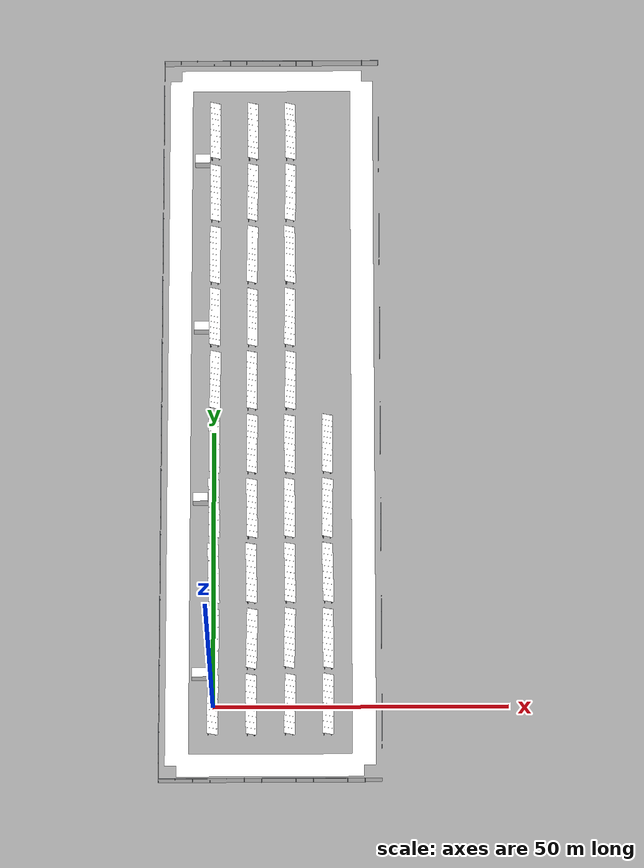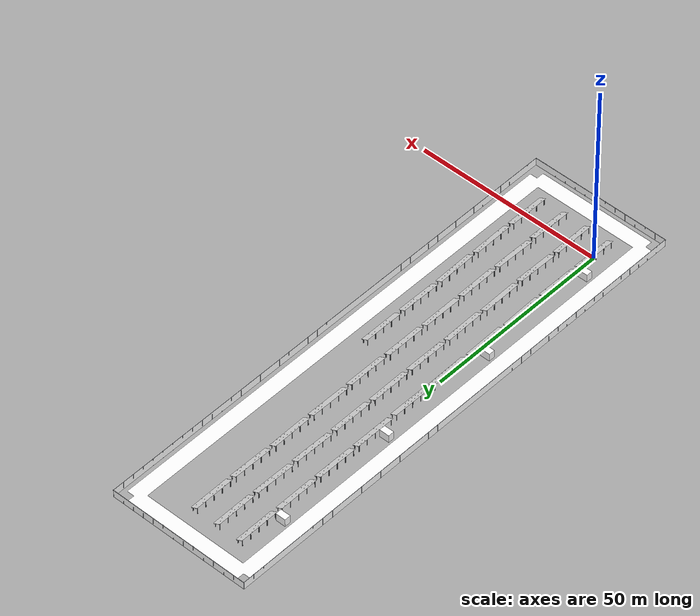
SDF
<sdf version="1.10">
 <world name="solar_farm">
  <physics name="default" type="ode">
   <max_step_size>0.001</max_step_size>
   <real_time_factor>1.0</real_time_factor>
  </physics>
  <plugin filename="gz-sim-physics-system" name="gz::sim::systems::Physics"/>
  <plugin filename="gz-sim-user-commands-system" name="gz::sim::systems::UserCommands"/>
  <plugin filename="gz-sim-scene-broadcaster-system" name="gz::sim::systems::SceneBroadcaster"/>
  <plugin filename="gz-sim-sensors-system" name="gz::sim::systems::Sensors">
   <render_engine>ogre2</render_engine>
  </plugin>
  <plugin filename="gz-sim-imu-system" name="gz::sim::systems::Imu"/>
  <plugin filename="gz-sim-navsat-system" name="gz::sim::systems::NavSat"/>
  <spherical_coordinates>
   <latitude_deg>-35.363262</latitude_deg>
   <longitude_deg>149.165237</longitude_deg>
   <elevation>584</elevation>
   <heading_deg>0</heading_deg>
   <surface_model>EARTH_WGS84</surface_model>
  </spherical_coordinates>
  <scene>
   <ambient>0.50 0.51 0.55 1</ambient>
   <background>0.62 0.72 0.85 1</background>
   <shadows>true</shadows>
   <grid>false</grid>
  </scene>
  <light type="directional" name="sun">
   <pose>0 0 60 0 0 0</pose>
   <diffuse>1.00 0.97 0.90 1</diffuse>
   <specular>0.35 0.35 0.33 1</specular>
   <direction>0.4394 -0.3687 -0.8192</direction>
   <attenuation>
    <range>1000</range>
    <constant>0.9</constant>
    <linear>0.0</linear>
    <quadratic>0.0</quadratic>
   </attenuation>
  </light>
  <model name="table_0000">
   <static>true</static>
   <pose>-0.052 0.058 0 0 0 -0.00816</pose>
   <link name="table">
    <collision name="glass_col">
     <pose>0 0 1.6 0 0.488692 0</pose>
     <geometry><box><size>2.100 10.680 0.040</size></box></geometry>
    </collision>
    <visual name="glass">
     <pose>0 0 1.6 0 0.488692 0</pose>
     <geometry><mesh><uri>model://solar_farm_assets/meshes/pv_glass.obj</uri></mesh></geometry>
     <material>
      <ambient>0.25 0.25 0.25 1</ambient>
      <diffuse>1 1 1 1</diffuse>
      <specular>0.4 0.4 0.4 1</specular>
      <pbr>
       <metal>
        <albedo_map>model://solar_farm_assets/materials/textures/pv_atlas_01_albedo.png</albedo_map>
        <roughness_map>model://solar_farm_assets/materials/textures/pv_atlas_01_roughness.png</roughness_map>
        <normal_map>model://solar_farm_assets/materials/textures/pv_normal.png</normal_map>
        <metalness>0.1</metalness>
       </metal>
      </pbr>
     </material>
    </visual>
    <visual name="rack">
     <cast_shadows>false</cast_shadows>
     <geometry><mesh><uri>model://solar_farm_assets/meshes/pv_rack.obj</uri></mesh></geometry>
     <material>
      <ambient>0.18 0.18 0.20 1</ambient>
      <diffuse>0.40 0.41 0.43 1</diffuse>
      <specular>0.5 0.5 0.5 1</specular>
      <pbr><metal><roughness>0.45</roughness><metalness>0.85</metalness></metal></pbr>
     </material>
    </visual>
   </link>
  </model>
  <model name="table_0001">
   <static>true</static>
   <pose>0.043 11.860 0 0 0 -0.00748</pose>
   <link name="table">
    <collision name="glass_col">
     <pose>0 0 1.6 0 0.488692 0</pose>
     <geometry><box><size>2.100 10.680 0.040</size></box></geometry>
    </collision>
    <visual name="glass">
     <pose>0 0 1.6 0 0.488692 0</pose>
     <geometry><mesh><uri>model://solar_farm_assets/meshes/pv_glass.obj</uri></mesh></geometry>
     <material>
      <ambient>0.25 0.25 0.25 1</ambient>
      <diffuse>1 1 1 1</diffuse>
      <specular>0.4 0.4 0.4 1</specular>
      <pbr>
       <metal>
        <albedo_map>model://solar_farm_assets/materials/textures/pv_atlas_08_albedo.png</albedo_map>
        <roughness_map>model://solar_farm_assets/materials/textures/pv_atlas_08_roughness.png</roughness_map>
        <normal_map>model://solar_farm_assets/materials/textures/pv_normal.png</normal_map>
        <metalness>0.1</metalness>
       </metal>
      </pbr>
     </material>
    </visual>
    <visual name="rack">
     <cast_shadows>false</cast_shadows>
     <geometry><mesh><uri>model://solar_farm_assets/meshes/pv_rack.obj</uri></mesh></geometry>
     <material>
      <ambient>0.18 0.18 0.20 1</ambient>
      <diffuse>0.40 0.41 0.43 1</diffuse>
      <specular>0.5 0.5 0.5 1</specular>
      <pbr><metal><roughness>0.45</roughness><metalness>0.85</metalness></metal></pbr>
     </material>
    </visual>
   </link>
  </model>
  <model name="table_0002">
   <static>true</static>
   <pose>-0.021 23.706 0 0 0 0.02349</pose>
   <link name="table">
    <collision name="glass_col">
     <pose>0 0 1.6 0 0.488692 0</pose>
     <geometry><box><size>2.100 10.680 0.040</size></box></geometry>
    </collision>
    <visual name="glass">
     <pose>0 0 1.6 0 0.488692 0</pose>
     <geometry><mesh><uri>model://solar_farm_assets/meshes/pv_glass.obj</uri></mesh></geometry>
     <material>
      <ambient>0.25 0.25 0.25 1</ambient>
      <diffuse>1 1 1 1</diffuse>
      <specular>0.4 0.4 0.4 1</specular>
      <pbr>
       <metal>
        <albedo_map>model://solar_farm_assets/materials/textures/pv_atlas_11_albedo.png</albedo_map>
        <roughness_map>model://solar_farm_assets/materials/textures/pv_atlas_11_roughness.png</roughness_map>
        <normal_map>model://solar_farm_assets/materials/textures/pv_normal.png</normal_map>
        <metalness>0.1</metalness>
       </metal>
      </pbr>
     </material>
    </visual>
    <visual name="rack">
     <cast_shadows>false</cast_shadows>
     <geometry><mesh><uri>model://solar_farm_assets/meshes/pv_rack.obj</uri></mesh></geometry>
     <material>
      <ambient>0.18 0.18 0.20 1</ambient>
      <diffuse>0.40 0.41 0.43 1</diffuse>
      <specular>0.5 0.5 0.5 1</specular>
      <pbr><metal><roughness>0.45</roughness><metalness>0.85</metalness></metal></pbr>
     </material>
    </visual>
   </link>
  </model>
  <model name="table_0003">
   <static>true</static>
   <pose>0.005 35.646 0 0 0 0.01629</pose>
   <link name="table">
    <collision name="glass_col">
     <pose>0 0 1.6 0 0.488692 0</pose>
     <geometry><box><size>2.100 10.680 0.040</size></box></geometry>
    </collision>
    <visual name="glass">
     <pose>0 0 1.6 0 0.488692 0</pose>
     <geometry><mesh><uri>model://solar_farm_assets/meshes/pv_glass.obj</uri></mesh></geometry>
     <material>
      <ambient>0.25 0.25 0.25 1</ambient>
      <diffuse>1 1 1 1</diffuse>
      <specular>0.4 0.4 0.4 1</specular>
      <pbr>
       <metal>
        <albedo_map>model://solar_farm_assets/materials/textures/pv_atlas_00_albedo.png</albedo_map>
        <roughness_map>model://solar_farm_assets/materials/textures/pv_atlas_00_roughness.png</roughness_map>
        <normal_map>model://solar_farm_assets/materials/textures/pv_normal.png</normal_map>
        <metalness>0.1</metalness>
       </metal>
      </pbr>
     </material>
    </visual>
    <visual name="rack">
     <cast_shadows>false</cast_shadows>
     <geometry><mesh><uri>model://solar_farm_assets/meshes/pv_rack.obj</uri></mesh></geometry>
     <material>
      <ambient>0.18 0.18 0.20 1</ambient>
      <diffuse>0.40 0.41 0.43 1</diffuse>
      <specular>0.5 0.5 0.5 1</specular>
      <pbr><metal><roughness>0.45</roughness><metalness>0.85</metalness></metal></pbr>
     </material>
    </visual>
   </link>
  </model>
  <model name="table_0004">
   <static>true</static>
   <pose>0.014 47.573 0 0 0 0.01068</pose>
   <link name="table">
    <collision name="glass_col">
     <pose>0 0 1.6 0 0.488692 0</pose>
     <geometry><box><size>2.100 10.680 0.040</size></box></geometry>
    </collision>
    <visual name="glass">
     <pose>0 0 1.6 0 0.488692 0</pose>
     <geometry><mesh><uri>model://solar_farm_assets/meshes/pv_glass.obj</uri></mesh></geometry>
     <material>
      <ambient>0.25 0.25 0.25 1</ambient>
      <diffuse>1 1 1 1</diffuse>
      <specular>0.4 0.4 0.4 1</specular>
      <pbr>
       <metal>
        <albedo_map>model://solar_farm_assets/materials/textures/pv_atlas_05_albedo.png</albedo_map>
        <roughness_map>model://solar_farm_assets/materials/textures/pv_atlas_05_roughness.png</roughness_map>
        <normal_map>model://solar_farm_assets/materials/textures/pv_normal.png</normal_map>
        <metalness>0.1</metalness>
       </metal>
      </pbr>
     </material>
    </visual>
    <visual name="rack">
     <cast_shadows>false</cast_shadows>
     <geometry><mesh><uri>model://solar_farm_assets/meshes/pv_rack.obj</uri></mesh></geometry>
     <material>
      <ambient>0.18 0.18 0.20 1</ambient>
      <diffuse>0.40 0.41 0.43 1</diffuse>
      <specular>0.5 0.5 0.5 1</specular>
      <pbr><metal><roughness>0.45</roughness><metalness>0.85</metalness></metal></pbr>
     </material>
    </visual>
   </link>
  </model>
  <model name="table_0005">
   <static>true</static>
   <pose>0.091 59.446 0 0 0 -0.00746</pose>
   <link name="table">
    <collision name="glass_col">
     <pose>0 0 1.6 0 0.488692 0</pose>
     <geometry><box><size>2.100 10.680 0.040</size></box></geometry>
    </collision>
    <visual name="glass">
     <pose>0 0 1.6 0 0.488692 0</pose>
     <geometry><mesh><uri>model://solar_farm_assets/meshes/pv_glass.obj</uri></mesh></geometry>
     <material>
      <ambient>0.25 0.25 0.25 1</ambient>
      <diffuse>1 1 1 1</diffuse>
      <specular>0.4 0.4 0.4 1</specular>
      <pbr>
       <metal>
        <albedo_map>model://solar_farm_assets/materials/textures/pv_atlas_10_albedo.png</albedo_map>
        <roughness_map>model://solar_farm_assets/materials/textures/pv_atlas_10_roughness.png</roughness_map>
        <normal_map>model://solar_farm_assets/materials/textures/pv_normal.png</normal_map>
        <metalness>0.1</metalness>
       </metal>
      </pbr>
     </material>
    </visual>
    <visual name="rack">
     <cast_shadows>false</cast_shadows>
     <geometry><mesh><uri>model://solar_farm_assets/meshes/pv_rack.obj</uri></mesh></geometry>
     <material>
      <ambient>0.18 0.18 0.20 1</ambient>
      <diffuse>0.40 0.41 0.43 1</diffuse>
      <specular>0.5 0.5 0.5 1</specular>
      <pbr><metal><roughness>0.45</roughness><metalness>0.85</metalness></metal></pbr>
     </material>
    </visual>
   </link>
  </model>
  <model name="table_0006">
   <static>true</static>
   <pose>-0.032 71.339 0 0 0 -0.00011</pose>
   <link name="table">
    <collision name="glass_col">
     <pose>0 0 1.6 0 0.488692 0</pose>
     <geometry><box><size>2.100 10.680 0.040</size></box></geometry>
    </collision>
    <visual name="glass">
     <pose>0 0 1.6 0 0.488692 0</pose>
     <geometry><mesh><uri>model://solar_farm_assets/meshes/pv_glass.obj</uri></mesh></geometry>
     <material>
      <ambient>0.25 0.25 0.25 1</ambient>
      <diffuse>1 1 1 1</diffuse>
      <specular>0.4 0.4 0.4 1</specular>
      <pbr>
       <metal>
        <albedo_map>model://solar_farm_assets/materials/textures/pv_atlas_15_albedo.png</albedo_map>
        <roughness_map>model://solar_farm_assets/materials/textures/pv_atlas_15_roughness.png</roughness_map>
        <normal_map>model://solar_farm_assets/materials/textures/pv_normal.png</normal_map>
        <metalness>0.1</metalness>
       </metal>
      </pbr>
     </material>
    </visual>
    <visual name="rack">
     <cast_shadows>false</cast_shadows>
     <geometry><mesh><uri>model://solar_farm_assets/meshes/pv_rack.obj</uri></mesh></geometry>
     <material>
      <ambient>0.18 0.18 0.20 1</ambient>
      <diffuse>0.40 0.41 0.43 1</diffuse>
      <specular>0.5 0.5 0.5 1</specular>
      <pbr><metal><roughness>0.45</roughness><metalness>0.85</metalness></metal></pbr>
     </material>
    </visual>
   </link>
  </model>
  <model name="table_0007">
   <static>true</static>
   <pose>-0.025 83.118 0 0 0 -0.00457</pose>
   <link name="table">
    <collision name="glass_col">
     <pose>0 0 1.6 0 0.488692 0</pose>
     <geometry><box><size>2.100 10.680 0.040</size></box></geometry>
    </collision>
    <visual name="glass">
     <pose>0 0 1.6 0 0.488692 0</pose>
     <geometry><mesh><uri>model://solar_farm_assets/meshes/pv_glass.obj</uri></mesh></geometry>
     <material>
      <ambient>0.25 0.25 0.25 1</ambient>
      <diffuse>1 1 1 1</diffuse>
      <specular>0.4 0.4 0.4 1</specular>
      <pbr>
       <metal>
        <albedo_map>model://solar_farm_assets/materials/textures/pv_atlas_07_albedo.png</albedo_map>
        <roughness_map>model://solar_farm_assets/materials/textures/pv_atlas_07_roughness.png</roughness_map>
        <normal_map>model://solar_farm_assets/materials/textures/pv_normal.png</normal_map>
        <metalness>0.1</metalness>
       </metal>
      </pbr>
     </material>
    </visual>
    <visual name="rack">
     <cast_shadows>false</cast_shadows>
     <geometry><mesh><uri>model://solar_farm_assets/meshes/pv_rack.obj</uri></mesh></geometry>
     <material>
      <ambient>0.18 0.18 0.20 1</ambient>
      <diffuse>0.40 0.41 0.43 1</diffuse>
      <specular>0.5 0.5 0.5 1</specular>
      <pbr><metal><roughness>0.45</roughness><metalness>0.85</metalness></metal></pbr>
     </material>
    </visual>
   </link>
  </model>
  <model name="table_0008">
   <static>true</static>
   <pose>-0.043 94.991 0 0 0 0.00524</pose>
   <link name="table">
    <collision name="glass_col">
     <pose>0 0 1.6 0 0.488692 0</pose>
     <geometry><box><size>2.100 10.680 0.040</size></box></geometry>
    </collision>
    <visual name="glass">
     <pose>0 0 1.6 0 0.488692 0</pose>
     <geometry><mesh><uri>model://solar_farm_assets/meshes/pv_glass.obj</uri></mesh></geometry>
     <material>
      <ambient>0.25 0.25 0.25 1</ambient>
      <diffuse>1 1 1 1</diffuse>
      <specular>0.4 0.4 0.4 1</specular>
      <pbr>
       <metal>
        <albedo_map>model://solar_farm_assets/materials/textures/pv_atlas_14_albedo.png</albedo_map>
        <roughness_map>model://solar_farm_assets/materials/textures/pv_atlas_14_roughness.png</roughness_map>
        <normal_map>model://solar_farm_assets/materials/textures/pv_normal.png</normal_map>
        <metalness>0.1</metalness>
       </metal>
      </pbr>
     </material>
    </visual>
    <visual name="rack">
     <cast_shadows>false</cast_shadows>
     <geometry><mesh><uri>model://solar_farm_assets/meshes/pv_rack.obj</uri></mesh></geometry>
     <material>
      <ambient>0.18 0.18 0.20 1</ambient>
      <diffuse>0.40 0.41 0.43 1</diffuse>
      <specular>0.5 0.5 0.5 1</specular>
      <pbr><metal><roughness>0.45</roughness><metalness>0.85</metalness></metal></pbr>
     </material>
    </visual>
   </link>
  </model>
  <model name="table_0009">
   <static>true</static>
   <pose>-0.029 107.003 0 0 0 0.00418</pose>
   <link name="table">
    <collision name="glass_col">
     <pose>0 0 1.6 0 0.488692 0</pose>
     <geometry><box><size>2.100 10.680 0.040</size></box></geometry>
    </collision>
    <visual name="glass">
     <pose>0 0 1.6 0 0.488692 0</pose>
     <geometry><mesh><uri>model://solar_farm_assets/meshes/pv_glass.obj</uri></mesh></geometry>
     <material>
      <ambient>0.25 0.25 0.25 1</ambient>
      <diffuse>1 1 1 1</diffuse>
      <specular>0.4 0.4 0.4 1</specular>
      <pbr>
       <metal>
        <albedo_map>model://solar_farm_assets/materials/textures/pv_atlas_06_albedo.png</albedo_map>
        <roughness_map>model://solar_farm_assets/materials/textures/pv_atlas_06_roughness.png</roughness_map>
        <normal_map>model://solar_farm_assets/materials/textures/pv_normal.png</normal_map>
        <metalness>0.1</metalness>
       </metal>
      </pbr>
     </material>
    </visual>
    <visual name="rack">
     <cast_shadows>false</cast_shadows>
     <geometry><mesh><uri>model://solar_farm_assets/meshes/pv_rack.obj</uri></mesh></geometry>
     <material>
      <ambient>0.18 0.18 0.20 1</ambient>
      <diffuse>0.40 0.41 0.43 1</diffuse>
      <specular>0.5 0.5 0.5 1</specular>
      <pbr><metal><roughness>0.45</roughness><metalness>0.85</metalness></metal></pbr>
     </material>
    </visual>
   </link>
  </model>
  <model name="table_0010">
   <static>true</static>
   <pose>6.467 -0.000 0 0 0 0.00585</pose>
   <link name="table">
    <collision name="glass_col">
     <pose>0 0 1.6 0 0.488692 0</pose>
     <geometry><box><size>2.100 10.680 0.040</size></box></geometry>
    </collision>
    <visual name="glass">
     <pose>0 0 1.6 0 0.488692 0</pose>
     <geometry><mesh><uri>model://solar_farm_assets/meshes/pv_glass.obj</uri></mesh></geometry>
     <material>
      <ambient>0.25 0.25 0.25 1</ambient>
      <diffuse>1 1 1 1</diffuse>
      <specular>0.4 0.4 0.4 1</specular>
      <pbr>
       <metal>
        <albedo_map>model://solar_farm_assets/materials/textures/pv_atlas_13_albedo.png</albedo_map>
        <roughness_map>model://solar_farm_assets/materials/textures/pv_atlas_13_roughness.png</roughness_map>
        <normal_map>model://solar_farm_assets/materials/textures/pv_normal.png</normal_map>
        <metalness>0.1</metalness>
       </metal>
      </pbr>
     </material>
    </visual>
    <visual name="rack">
     <cast_shadows>false</cast_shadows>
     <geometry><mesh><uri>model://solar_farm_assets/meshes/pv_rack.obj</uri></mesh></geometry>
     <material>
      <ambient>0.18 0.18 0.20 1</ambient>
      <diffuse>0.40 0.41 0.43 1</diffuse>
      <specular>0.5 0.5 0.5 1</specular>
      <pbr><metal><roughness>0.45</roughness><metalness>0.85</metalness></metal></pbr>
     </material>
    </visual>
   </link>
  </model>
  <model name="table_0011">
   <static>true</static>
   <pose>6.551 11.837 0 0 0 -0.01861</pose>
   <link name="table">
    <collision name="glass_col">
     <pose>0 0 1.6 0 0.488692 0</pose>
     <geometry><box><size>2.100 10.680 0.040</size></box></geometry>
    </collision>
    <visual name="glass">
     <pose>0 0 1.6 0 0.488692 0</pose>
     <geometry><mesh><uri>model://solar_farm_assets/meshes/pv_glass.obj</uri></mesh></geometry>
     <material>
      <ambient>0.25 0.25 0.25 1</ambient>
      <diffuse>1 1 1 1</diffuse>
      <specular>0.4 0.4 0.4 1</specular>
      <pbr>
       <metal>
        <albedo_map>model://solar_farm_assets/materials/textures/pv_atlas_17_albedo.png</albedo_map>
        <roughness_map>model://solar_farm_assets/materials/textures/pv_atlas_17_roughness.png</roughness_map>
        <normal_map>model://solar_farm_assets/materials/textures/pv_normal.png</normal_map>
        <metalness>0.1</metalness>
       </metal>
      </pbr>
     </material>
    </visual>
    <visual name="rack">
     <cast_shadows>false</cast_shadows>
     <geometry><mesh><uri>model://solar_farm_assets/meshes/pv_rack.obj</uri></mesh></geometry>
     <material>
      <ambient>0.18 0.18 0.20 1</ambient>
      <diffuse>0.40 0.41 0.43 1</diffuse>
      <specular>0.5 0.5 0.5 1</specular>
      <pbr><metal><roughness>0.45</roughness><metalness>0.85</metalness></metal></pbr>
     </material>
    </visual>
   </link>
  </model>
  <model name="table_0012">
   <static>true</static>
   <pose>6.430 23.735 0 0 0 0.01618</pose>
   <link name="table">
    <collision name="glass_col">
     <pose>0 0 1.6 0 0.488692 0</pose>
     <geometry><box><size>2.100 10.680 0.040</size></box></geometry>
    </collision>
    <visual name="glass">
     <pose>0 0 1.6 0 0.488692 0</pose>
     <geometry><mesh><uri>model://solar_farm_assets/meshes/pv_glass.obj</uri></mesh></geometry>
     <material>
      <ambient>0.25 0.25 0.25 1</ambient>
      <diffuse>1 1 1 1</diffuse>
      <specular>0.4 0.4 0.4 1</specular>
      <pbr>
       <metal>
        <albedo_map>model://solar_farm_assets/materials/textures/pv_atlas_03_albedo.png</albedo_map>
        <roughness_map>model://solar_farm_assets/materials/textures/pv_atlas_03_roughness.png</roughness_map>
        <normal_map>model://solar_farm_assets/materials/textures/pv_normal.png</normal_map>
        <metalness>0.1</metalness>
       </metal>
      </pbr>
     </material>
    </visual>
    <visual name="rack">
     <cast_shadows>false</cast_shadows>
     <geometry><mesh><uri>model://solar_farm_assets/meshes/pv_rack.obj</uri></mesh></geometry>
     <material>
      <ambient>0.18 0.18 0.20 1</ambient>
      <diffuse>0.40 0.41 0.43 1</diffuse>
      <specular>0.5 0.5 0.5 1</specular>
      <pbr><metal><roughness>0.45</roughness><metalness>0.85</metalness></metal></pbr>
     </material>
    </visual>
   </link>
  </model>
  <model name="table_0013">
   <static>true</static>
   <pose>6.496 35.611 0 0 0 0.01446</pose>
   <link name="table">
    <collision name="glass_col">
     <pose>0 0 1.6 0 0.488692 0</pose>
     <geometry><box><size>2.100 10.680 0.040</size></box></geometry>
    </collision>
    <visual name="glass">
     <pose>0 0 1.6 0 0.488692 0</pose>
     <geometry><mesh><uri>model://solar_farm_assets/meshes/pv_glass.obj</uri></mesh></geometry>
     <material>
      <ambient>0.25 0.25 0.25 1</ambient>
      <diffuse>1 1 1 1</diffuse>
      <specular>0.4 0.4 0.4 1</specular>
      <pbr>
       <metal>
        <albedo_map>model://solar_farm_assets/materials/textures/pv_atlas_16_albedo.png</albedo_map>
        <roughness_map>model://solar_farm_assets/materials/textures/pv_atlas_16_roughness.png</roughness_map>
        <normal_map>model://solar_farm_assets/materials/textures/pv_normal.png</normal_map>
        <metalness>0.1</metalness>
       </metal>
      </pbr>
     </material>
    </visual>
    <visual name="rack">
     <cast_shadows>false</cast_shadows>
     <geometry><mesh><uri>model://solar_farm_assets/meshes/pv_rack.obj</uri></mesh></geometry>
     <material>
      <ambient>0.18 0.18 0.20 1</ambient>
      <diffuse>0.40 0.41 0.43 1</diffuse>
      <specular>0.5 0.5 0.5 1</specular>
      <pbr><metal><roughness>0.45</roughness><metalness>0.85</metalness></metal></pbr>
     </material>
    </visual>
   </link>
  </model>
  <model name="table_0014">
   <static>true</static>
   <pose>6.481 47.524 0 0 0 -0.00235</pose>
   <link name="table">
    <collision name="glass_col">
     <pose>0 0 1.6 0 0.488692 0</pose>
     <geometry><box><size>2.100 10.680 0.040</size></box></geometry>
    </collision>
    <visual name="glass">
     <pose>0 0 1.6 0 0.488692 0</pose>
     <geometry><mesh><uri>model://solar_farm_assets/meshes/pv_glass.obj</uri></mesh></geometry>
     <material>
      <ambient>0.25 0.25 0.25 1</ambient>
      <diffuse>1 1 1 1</diffuse>
      <specular>0.4 0.4 0.4 1</specular>
      <pbr>
       <metal>
        <albedo_map>model://solar_farm_assets/materials/textures/pv_atlas_12_albedo.png</albedo_map>
        <roughness_map>model://solar_farm_assets/materials/textures/pv_atlas_12_roughness.png</roughness_map>
        <normal_map>model://solar_farm_assets/materials/textures/pv_normal.png</normal_map>
        <metalness>0.1</metalness>
       </metal>
      </pbr>
     </material>
    </visual>
    <visual name="rack">
     <cast_shadows>false</cast_shadows>
     <geometry><mesh><uri>model://solar_farm_assets/meshes/pv_rack.obj</uri></mesh></geometry>
     <material>
      <ambient>0.18 0.18 0.20 1</ambient>
      <diffuse>0.40 0.41 0.43 1</diffuse>
      <specular>0.5 0.5 0.5 1</specular>
      <pbr><metal><roughness>0.45</roughness><metalness>0.85</metalness></metal></pbr>
     </material>
    </visual>
   </link>
  </model>
  <model name="table_0015">
   <static>true</static>
   <pose>6.426 59.375 0 0 0 0.00863</pose>
   <link name="table">
    <collision name="glass_col">
     <pose>0 0 1.6 0 0.488692 0</pose>
     <geometry><box><size>2.100 10.680 0.040</size></box></geometry>
    </collision>
    <visual name="glass">
     <pose>0 0 1.6 0 0.488692 0</pose>
     <geometry><mesh><uri>model://solar_farm_assets/meshes/pv_glass.obj</uri></mesh></geometry>
     <material>
      <ambient>0.25 0.25 0.25 1</ambient>
      <diffuse>1 1 1 1</diffuse>
      <specular>0.4 0.4 0.4 1</specular>
      <pbr>
       <metal>
        <albedo_map>model://solar_farm_assets/materials/textures/pv_atlas_02_albedo.png</albedo_map>
        <roughness_map>model://solar_farm_assets/materials/textures/pv_atlas_02_roughness.png</roughness_map>
        <normal_map>model://solar_farm_assets/materials/textures/pv_normal.png</normal_map>
        <metalness>0.1</metalness>
       </metal>
      </pbr>
     </material>
    </visual>
    <visual name="rack">
     <cast_shadows>false</cast_shadows>
     <geometry><mesh><uri>model://solar_farm_assets/meshes/pv_rack.obj</uri></mesh></geometry>
     <material>
      <ambient>0.18 0.18 0.20 1</ambient>
      <diffuse>0.40 0.41 0.43 1</diffuse>
      <specular>0.5 0.5 0.5 1</specular>
      <pbr><metal><roughness>0.45</roughness><metalness>0.85</metalness></metal></pbr>
     </material>
    </visual>
   </link>
  </model>
  <model name="table_0016">
   <static>true</static>
   <pose>6.494 71.223 0 0 0 0.00199</pose>
   <link name="table">
    <collision name="glass_col">
     <pose>0 0 1.6 0 0.488692 0</pose>
     <geometry><box><size>2.100 10.680 0.040</size></box></geometry>
    </collision>
    <visual name="glass">
     <pose>0 0 1.6 0 0.488692 0</pose>
     <geometry><mesh><uri>model://solar_farm_assets/meshes/pv_glass.obj</uri></mesh></geometry>
     <material>
      <ambient>0.25 0.25 0.25 1</ambient>
      <diffuse>1 1 1 1</diffuse>
      <specular>0.4 0.4 0.4 1</specular>
      <pbr>
       <metal>
        <albedo_map>model://solar_farm_assets/materials/textures/pv_atlas_09_albedo.png</albedo_map>
        <roughness_map>model://solar_farm_assets/materials/textures/pv_atlas_09_roughness.png</roughness_map>
        <normal_map>model://solar_farm_assets/materials/textures/pv_normal.png</normal_map>
        <metalness>0.1</metalness>
       </metal>
      </pbr>
     </material>
    </visual>
    <visual name="rack">
     <cast_shadows>false</cast_shadows>
     <geometry><mesh><uri>model://solar_farm_assets/meshes/pv_rack.obj</uri></mesh></geometry>
     <material>
      <ambient>0.18 0.18 0.20 1</ambient>
      <diffuse>0.40 0.41 0.43 1</diffuse>
      <specular>0.5 0.5 0.5 1</specular>
      <pbr><metal><roughness>0.45</roughness><metalness>0.85</metalness></metal></pbr>
     </material>
    </visual>
   </link>
  </model>
  <model name="table_0017">
   <static>true</static>
   <pose>6.452 83.163 0 0 0 -0.01487</pose>
   <link name="table">
    <collision name="glass_col">
     <pose>0 0 1.6 0 0.488692 0</pose>
     <geometry><box><size>2.100 10.680 0.040</size></box></geometry>
    </collision>
    <visual name="glass">
     <pose>0 0 1.6 0 0.488692 0</pose>
     <geometry><mesh><uri>model://solar_farm_assets/meshes/pv_glass.obj</uri></mesh></geometry>
     <material>
      <ambient>0.25 0.25 0.25 1</ambient>
      <diffuse>1 1 1 1</diffuse>
      <specular>0.4 0.4 0.4 1</specular>
      <pbr>
       <metal>
        <albedo_map>model://solar_farm_assets/materials/textures/pv_atlas_04_albedo.png</albedo_map>
        <roughness_map>model://solar_farm_assets/materials/textures/pv_atlas_04_roughness.png</roughness_map>
        <normal_map>model://solar_farm_assets/materials/textures/pv_normal.png</normal_map>
        <metalness>0.1</metalness>
       </metal>
      </pbr>
     </material>
    </visual>
    <visual name="rack">
     <cast_shadows>false</cast_shadows>
     <geometry><mesh><uri>model://solar_farm_assets/meshes/pv_rack.obj</uri></mesh></geometry>
     <material>
      <ambient>0.18 0.18 0.20 1</ambient>
      <diffuse>0.40 0.41 0.43 1</diffuse>
      <specular>0.5 0.5 0.5 1</specular>
      <pbr><metal><roughness>0.45</roughness><metalness>0.85</metalness></metal></pbr>
     </material>
    </visual>
   </link>
  </model>
  <model name="table_0018">
   <static>true</static>
   <pose>6.496 95.066 0 0 0 -0.01174</pose>
   <link name="table">
    <collision name="glass_col">
     <pose>0 0 1.6 0 0.488692 0</pose>
     <geometry><box><size>2.100 10.680 0.040</size></box></geometry>
    </collision>
    <visual name="glass">
     <pose>0 0 1.6 0 0.488692 0</pose>
     <geometry><mesh><uri>model://solar_farm_assets/meshes/pv_glass.obj</uri></mesh></geometry>
     <material>
      <ambient>0.25 0.25 0.25 1</ambient>
      <diffuse>1 1 1 1</diffuse>
      <specular>0.4 0.4 0.4 1</specular>
      <pbr>
       <metal>
        <albedo_map>model://solar_farm_assets/materials/textures/pv_atlas_05_albedo.png</albedo_map>
        <roughness_map>model://solar_farm_assets/materials/textures/pv_atlas_05_roughness.png</roughness_map>
        <normal_map>model://solar_farm_assets/materials/textures/pv_normal.png</normal_map>
        <metalness>0.1</metalness>
       </metal>
      </pbr>
     </material>
    </visual>
    <visual name="rack">
     <cast_shadows>false</cast_shadows>
     <geometry><mesh><uri>model://solar_farm_assets/meshes/pv_rack.obj</uri></mesh></geometry>
     <material>
      <ambient>0.18 0.18 0.20 1</ambient>
      <diffuse>0.40 0.41 0.43 1</diffuse>
      <specular>0.5 0.5 0.5 1</specular>
      <pbr><metal><roughness>0.45</roughness><metalness>0.85</metalness></metal></pbr>
     </material>
    </visual>
   </link>
  </model>
  <model name="table_0019">
   <static>true</static>
   <pose>6.535 106.932 0 0 0 0.00741</pose>
   <link name="table">
    <collision name="glass_col">
     <pose>0 0 1.6 0 0.488692 0</pose>
     <geometry><box><size>2.100 10.680 0.040</size></box></geometry>
    </collision>
    <visual name="glass">
     <pose>0 0 1.6 0 0.488692 0</pose>
     <geometry><mesh><uri>model://solar_farm_assets/meshes/pv_glass.obj</uri></mesh></geometry>
     <material>
      <ambient>0.25 0.25 0.25 1</ambient>
      <diffuse>1 1 1 1</diffuse>
      <specular>0.4 0.4 0.4 1</specular>
      <pbr>
       <metal>
        <albedo_map>model://solar_farm_assets/materials/textures/pv_atlas_15_albedo.png</albedo_map>
        <roughness_map>model://solar_farm_assets/materials/textures/pv_atlas_15_roughness.png</roughness_map>
        <normal_map>model://solar_farm_assets/materials/textures/pv_normal.png</normal_map>
        <metalness>0.1</metalness>
       </metal>
      </pbr>
     </material>
    </visual>
    <visual name="rack">
     <cast_shadows>false</cast_shadows>
     <geometry><mesh><uri>model://solar_farm_assets/meshes/pv_rack.obj</uri></mesh></geometry>
     <material>
      <ambient>0.18 0.18 0.20 1</ambient>
      <diffuse>0.40 0.41 0.43 1</diffuse>
      <specular>0.5 0.5 0.5 1</specular>
      <pbr><metal><roughness>0.45</roughness><metalness>0.85</metalness></metal></pbr>
     </material>
    </visual>
   </link>
  </model>
  <model name="table_0020">
   <static>true</static>
   <pose>13.032 0.041 0 0 0 -0.01662</pose>
   <link name="table">
    <collision name="glass_col">
     <pose>0 0 1.6 0 0.488692 0</pose>
     <geometry><box><size>2.100 10.680 0.040</size></box></geometry>
    </collision>
    <visual name="glass">
     <pose>0 0 1.6 0 0.488692 0</pose>
     <geometry><mesh><uri>model://solar_farm_assets/meshes/pv_glass.obj</uri></mesh></geometry>
     <material>
      <ambient>0.25 0.25 0.25 1</ambient>
      <diffuse>1 1 1 1</diffuse>
      <specular>0.4 0.4 0.4 1</specular>
      <pbr>
       <metal>
        <albedo_map>model://solar_farm_assets/materials/textures/pv_atlas_11_albedo.png</albedo_map>
        <roughness_map>model://solar_farm_assets/materials/textures/pv_atlas_11_roughness.png</roughness_map>
        <normal_map>model://solar_farm_assets/materials/textures/pv_normal.png</normal_map>
        <metalness>0.1</metalness>
       </metal>
      </pbr>
     </material>
    </visual>
    <visual name="rack">
     <cast_shadows>false</cast_shadows>
     <geometry><mesh><uri>model://solar_farm_assets/meshes/pv_rack.obj</uri></mesh></geometry>
     <material>
      <ambient>0.18 0.18 0.20 1</ambient>
      <diffuse>0.40 0.41 0.43 1</diffuse>
      <specular>0.5 0.5 0.5 1</specular>
      <pbr><metal><roughness>0.45</roughness><metalness>0.85</metalness></metal></pbr>
     </material>
    </visual>
   </link>
  </model>
  <model name="table_0021">
   <static>true</static>
   <pose>12.963 11.942 0 0 0 -0.01499</pose>
   <link name="table">
    <collision name="glass_col">
     <pose>0 0 1.6 0 0.488692 0</pose>
     <geometry><box><size>2.100 10.680 0.040</size></box></geometry>
    </collision>
    <visual name="glass">
     <pose>0 0 1.6 0 0.488692 0</pose>
     <geometry><mesh><uri>model://solar_farm_assets/meshes/pv_glass.obj</uri></mesh></geometry>
     <material>
      <ambient>0.25 0.25 0.25 1</ambient>
      <diffuse>1 1 1 1</diffuse>
      <specular>0.4 0.4 0.4 1</specular>
      <pbr>
       <metal>
        <albedo_map>model://solar_farm_assets/materials/textures/pv_atlas_01_albedo.png</albedo_map>
        <roughness_map>model://solar_farm_assets/materials/textures/pv_atlas_01_roughness.png</roughness_map>
        <normal_map>model://solar_farm_assets/materials/textures/pv_normal.png</normal_map>
        <metalness>0.1</metalness>
       </metal>
      </pbr>
     </material>
    </visual>
    <visual name="rack">
     <cast_shadows>false</cast_shadows>
     <geometry><mesh><uri>model://solar_farm_assets/meshes/pv_rack.obj</uri></mesh></geometry>
     <material>
      <ambient>0.18 0.18 0.20 1</ambient>
      <diffuse>0.40 0.41 0.43 1</diffuse>
      <specular>0.5 0.5 0.5 1</specular>
      <pbr><metal><roughness>0.45</roughness><metalness>0.85</metalness></metal></pbr>
     </material>
    </visual>
   </link>
  </model>
  <model name="table_0022">
   <static>true</static>
   <pose>13.008 23.771 0 0 0 0.01223</pose>
   <link name="table">
    <collision name="glass_col">
     <pose>0 0 1.6 0 0.488692 0</pose>
     <geometry><box><size>2.100 10.680 0.040</size></box></geometry>
    </collision>
    <visual name="glass">
     <pose>0 0 1.6 0 0.488692 0</pose>
     <geometry><mesh><uri>model://solar_farm_assets/meshes/pv_glass.obj</uri></mesh></geometry>
     <material>
      <ambient>0.25 0.25 0.25 1</ambient>
      <diffuse>1 1 1 1</diffuse>
      <specular>0.4 0.4 0.4 1</specular>
      <pbr>
       <metal>
        <albedo_map>model://solar_farm_assets/materials/textures/pv_atlas_10_albedo.png</albedo_map>
        <roughness_map>model://solar_farm_assets/materials/textures/pv_atlas_10_roughness.png</roughness_map>
        <normal_map>model://solar_farm_assets/materials/textures/pv_normal.png</normal_map>
        <metalness>0.1</metalness>
       </metal>
      </pbr>
     </material>
    </visual>
    <visual name="rack">
     <cast_shadows>false</cast_shadows>
     <geometry><mesh><uri>model://solar_farm_assets/meshes/pv_rack.obj</uri></mesh></geometry>
     <material>
      <ambient>0.18 0.18 0.20 1</ambient>
      <diffuse>0.40 0.41 0.43 1</diffuse>
      <specular>0.5 0.5 0.5 1</specular>
      <pbr><metal><roughness>0.45</roughness><metalness>0.85</metalness></metal></pbr>
     </material>
    </visual>
   </link>
  </model>
  <model name="table_0023">
   <static>true</static>
   <pose>12.921 35.654 0 0 0 0.00066</pose>
   <link name="table">
    <collision name="glass_col">
     <pose>0 0 1.6 0 0.488692 0</pose>
     <geometry><box><size>2.100 10.680 0.040</size></box></geometry>
    </collision>
    <visual name="glass">
     <pose>0 0 1.6 0 0.488692 0</pose>
     <geometry><mesh><uri>model://solar_farm_assets/meshes/pv_glass.obj</uri></mesh></geometry>
     <material>
      <ambient>0.25 0.25 0.25 1</ambient>
      <diffuse>1 1 1 1</diffuse>
      <specular>0.4 0.4 0.4 1</specular>
      <pbr>
       <metal>
        <albedo_map>model://solar_farm_assets/materials/textures/pv_atlas_14_albedo.png</albedo_map>
        <roughness_map>model://solar_farm_assets/materials/textures/pv_atlas_14_roughness.png</roughness_map>
        <normal_map>model://solar_farm_assets/materials/textures/pv_normal.png</normal_map>
        <metalness>0.1</metalness>
       </metal>
      </pbr>
     </material>
    </visual>
    <visual name="rack">
     <cast_shadows>false</cast_shadows>
     <geometry><mesh><uri>model://solar_farm_assets/meshes/pv_rack.obj</uri></mesh></geometry>
     <material>
      <ambient>0.18 0.18 0.20 1</ambient>
      <diffuse>0.40 0.41 0.43 1</diffuse>
      <specular>0.5 0.5 0.5 1</specular>
      <pbr><metal><roughness>0.45</roughness><metalness>0.85</metalness></metal></pbr>
     </material>
    </visual>
   </link>
  </model>
  <model name="table_0024">
   <static>true</static>
   <pose>12.962 47.418 0 0 0 0.00257</pose>
   <link name="table">
    <collision name="glass_col">
     <pose>0 0 1.6 0 0.488692 0</pose>
     <geometry><box><size>2.100 10.680 0.040</size></box></geometry>
    </collision>
    <visual name="glass">
     <pose>0 0 1.6 0 0.488692 0</pose>
     <geometry><mesh><uri>model://solar_farm_assets/meshes/pv_glass.obj</uri></mesh></geometry>
     <material>
      <ambient>0.25 0.25 0.25 1</ambient>
      <diffuse>1 1 1 1</diffuse>
      <specular>0.4 0.4 0.4 1</specular>
      <pbr>
       <metal>
        <albedo_map>model://solar_farm_assets/materials/textures/pv_atlas_08_albedo.png</albedo_map>
        <roughness_map>model://solar_farm_assets/materials/textures/pv_atlas_08_roughness.png</roughness_map>
        <normal_map>model://solar_farm_assets/materials/textures/pv_normal.png</normal_map>
        <metalness>0.1</metalness>
       </metal>
      </pbr>
     </material>
    </visual>
    <visual name="rack">
     <cast_shadows>false</cast_shadows>
     <geometry><mesh><uri>model://solar_farm_assets/meshes/pv_rack.obj</uri></mesh></geometry>
     <material>
      <ambient>0.18 0.18 0.20 1</ambient>
      <diffuse>0.40 0.41 0.43 1</diffuse>
      <specular>0.5 0.5 0.5 1</specular>
      <pbr><metal><roughness>0.45</roughness><metalness>0.85</metalness></metal></pbr>
     </material>
    </visual>
   </link>
  </model>
  <model name="table_0025">
   <static>true</static>
   <pose>13.068 59.367 0 0 0 -0.00139</pose>
   <link name="table">
    <collision name="glass_col">
     <pose>0 0 1.6 0 0.488692 0</pose>
     <geometry><box><size>2.100 10.680 0.040</size></box></geometry>
    </collision>
    <visual name="glass">
     <pose>0 0 1.6 0 0.488692 0</pose>
     <geometry><mesh><uri>model://solar_farm_assets/meshes/pv_glass.obj</uri></mesh></geometry>
     <material>
      <ambient>0.25 0.25 0.25 1</ambient>
      <diffuse>1 1 1 1</diffuse>
      <specular>0.4 0.4 0.4 1</specular>
      <pbr>
       <metal>
        <albedo_map>model://solar_farm_assets/materials/textures/pv_atlas_17_albedo.png</albedo_map>
        <roughness_map>model://solar_farm_assets/materials/textures/pv_atlas_17_roughness.png</roughness_map>
        <normal_map>model://solar_farm_assets/materials/textures/pv_normal.png</normal_map>
        <metalness>0.1</metalness>
       </metal>
      </pbr>
     </material>
    </visual>
    <visual name="rack">
     <cast_shadows>false</cast_shadows>
     <geometry><mesh><uri>model://solar_farm_assets/meshes/pv_rack.obj</uri></mesh></geometry>
     <material>
      <ambient>0.18 0.18 0.20 1</ambient>
      <diffuse>0.40 0.41 0.43 1</diffuse>
      <specular>0.5 0.5 0.5 1</specular>
      <pbr><metal><roughness>0.45</roughness><metalness>0.85</metalness></metal></pbr>
     </material>
    </visual>
   </link>
  </model>
  <model name="table_0026">
   <static>true</static>
   <pose>12.968 71.270 0 0 0 -0.00805</pose>
   <link name="table">
    <collision name="glass_col">
     <pose>0 0 1.6 0 0.488692 0</pose>
     <geometry><box><size>2.100 10.680 0.040</size></box></geometry>
    </collision>
    <visual name="glass">
     <pose>0 0 1.6 0 0.488692 0</pose>
     <geometry><mesh><uri>model://solar_farm_assets/meshes/pv_glass.obj</uri></mesh></geometry>
     <material>
      <ambient>0.25 0.25 0.25 1</ambient>
      <diffuse>1 1 1 1</diffuse>
      <specular>0.4 0.4 0.4 1</specular>
      <pbr>
       <metal>
        <albedo_map>model://solar_farm_assets/materials/textures/pv_atlas_09_albedo.png</albedo_map>
        <roughness_map>model://solar_farm_assets/materials/textures/pv_atlas_09_roughness.png</roughness_map>
        <normal_map>model://solar_farm_assets/materials/textures/pv_normal.png</normal_map>
        <metalness>0.1</metalness>
       </metal>
      </pbr>
     </material>
    </visual>
    <visual name="rack">
     <cast_shadows>false</cast_shadows>
     <geometry><mesh><uri>model://solar_farm_assets/meshes/pv_rack.obj</uri></mesh></geometry>
     <material>
      <ambient>0.18 0.18 0.20 1</ambient>
      <diffuse>0.40 0.41 0.43 1</diffuse>
      <specular>0.5 0.5 0.5 1</specular>
      <pbr><metal><roughness>0.45</roughness><metalness>0.85</metalness></metal></pbr>
     </material>
    </visual>
   </link>
  </model>
  <model name="table_0027">
   <static>true</static>
   <pose>12.984 83.144 0 0 0 0.01386</pose>
   <link name="table">
    <collision name="glass_col">
     <pose>0 0 1.6 0 0.488692 0</pose>
     <geometry><box><size>2.100 10.680 0.040</size></box></geometry>
    </collision>
    <visual name="glass">
     <pose>0 0 1.6 0 0.488692 0</pose>
     <geometry><mesh><uri>model://solar_farm_assets/meshes/pv_glass.obj</uri></mesh></geometry>
     <material>
      <ambient>0.25 0.25 0.25 1</ambient>
      <diffuse>1 1 1 1</diffuse>
      <specular>0.4 0.4 0.4 1</specular>
      <pbr>
       <metal>
        <albedo_map>model://solar_farm_assets/materials/textures/pv_atlas_16_albedo.png</albedo_map>
        <roughness_map>model://solar_farm_assets/materials/textures/pv_atlas_16_roughness.png</roughness_map>
        <normal_map>model://solar_farm_assets/materials/textures/pv_normal.png</normal_map>
        <metalness>0.1</metalness>
       </metal>
      </pbr>
     </material>
    </visual>
    <visual name="rack">
     <cast_shadows>false</cast_shadows>
     <geometry><mesh><uri>model://solar_farm_assets/meshes/pv_rack.obj</uri></mesh></geometry>
     <material>
      <ambient>0.18 0.18 0.20 1</ambient>
      <diffuse>0.40 0.41 0.43 1</diffuse>
      <specular>0.5 0.5 0.5 1</specular>
      <pbr><metal><roughness>0.45</roughness><metalness>0.85</metalness></metal></pbr>
     </material>
    </visual>
   </link>
  </model>
  <model name="table_0028">
   <static>true</static>
   <pose>13.074 95.053 0 0 0 -0.01062</pose>
   <link name="table">
    <collision name="glass_col">
     <pose>0 0 1.6 0 0.488692 0</pose>
     <geometry><box><size>2.100 10.680 0.040</size></box></geometry>
    </collision>
    <visual name="glass">
     <pose>0 0 1.6 0 0.488692 0</pose>
     <geometry><mesh><uri>model://solar_farm_assets/meshes/pv_glass.obj</uri></mesh></geometry>
     <material>
      <ambient>0.25 0.25 0.25 1</ambient>
      <diffuse>1 1 1 1</diffuse>
      <specular>0.4 0.4 0.4 1</specular>
      <pbr>
       <metal>
        <albedo_map>model://solar_farm_assets/materials/textures/pv_atlas_06_albedo.png</albedo_map>
        <roughness_map>model://solar_farm_assets/materials/textures/pv_atlas_06_roughness.png</roughness_map>
        <normal_map>model://solar_farm_assets/materials/textures/pv_normal.png</normal_map>
        <metalness>0.1</metalness>
       </metal>
      </pbr>
     </material>
    </visual>
    <visual name="rack">
     <cast_shadows>false</cast_shadows>
     <geometry><mesh><uri>model://solar_farm_assets/meshes/pv_rack.obj</uri></mesh></geometry>
     <material>
      <ambient>0.18 0.18 0.20 1</ambient>
      <diffuse>0.40 0.41 0.43 1</diffuse>
      <specular>0.5 0.5 0.5 1</specular>
      <pbr><metal><roughness>0.45</roughness><metalness>0.85</metalness></metal></pbr>
     </material>
    </visual>
   </link>
  </model>
  <model name="table_0029">
   <static>true</static>
   <pose>13.052 106.870 0 0 0 0.00720</pose>
   <link name="table">
    <collision name="glass_col">
     <pose>0 0 1.6 0 0.488692 0</pose>
     <geometry><box><size>2.100 10.680 0.040</size></box></geometry>
    </collision>
    <visual name="glass">
     <pose>0 0 1.6 0 0.488692 0</pose>
     <geometry><mesh><uri>model://solar_farm_assets/meshes/pv_glass.obj</uri></mesh></geometry>
     <material>
      <ambient>0.25 0.25 0.25 1</ambient>
      <diffuse>1 1 1 1</diffuse>
      <specular>0.4 0.4 0.4 1</specular>
      <pbr>
       <metal>
        <albedo_map>model://solar_farm_assets/materials/textures/pv_atlas_03_albedo.png</albedo_map>
        <roughness_map>model://solar_farm_assets/materials/textures/pv_atlas_03_roughness.png</roughness_map>
        <normal_map>model://solar_farm_assets/materials/textures/pv_normal.png</normal_map>
        <metalness>0.1</metalness>
       </metal>
      </pbr>
     </material>
    </visual>
    <visual name="rack">
     <cast_shadows>false</cast_shadows>
     <geometry><mesh><uri>model://solar_farm_assets/meshes/pv_rack.obj</uri></mesh></geometry>
     <material>
      <ambient>0.18 0.18 0.20 1</ambient>
      <diffuse>0.40 0.41 0.43 1</diffuse>
      <specular>0.5 0.5 0.5 1</specular>
      <pbr><metal><roughness>0.45</roughness><metalness>0.85</metalness></metal></pbr>
     </material>
    </visual>
   </link>
  </model>
  <model name="table_0030">
   <static>true</static>
   <pose>19.497 0.052 0 0 0 -0.00439</pose>
   <link name="table">
    <collision name="glass_col">
     <pose>0 0 1.6 0 0.488692 0</pose>
     <geometry><box><size>2.100 10.680 0.040</size></box></geometry>
    </collision>
    <visual name="glass">
     <pose>0 0 1.6 0 0.488692 0</pose>
     <geometry><mesh><uri>model://solar_farm_assets/meshes/pv_glass.obj</uri></mesh></geometry>
     <material>
      <ambient>0.25 0.25 0.25 1</ambient>
      <diffuse>1 1 1 1</diffuse>
      <specular>0.4 0.4 0.4 1</specular>
      <pbr>
       <metal>
        <albedo_map>model://solar_farm_assets/materials/textures/pv_atlas_04_albedo.png</albedo_map>
        <roughness_map>model://solar_farm_assets/materials/textures/pv_atlas_04_roughness.png</roughness_map>
        <normal_map>model://solar_farm_assets/materials/textures/pv_normal.png</normal_map>
        <metalness>0.1</metalness>
       </metal>
      </pbr>
     </material>
    </visual>
    <visual name="rack">
     <cast_shadows>false</cast_shadows>
     <geometry><mesh><uri>model://solar_farm_assets/meshes/pv_rack.obj</uri></mesh></geometry>
     <material>
      <ambient>0.18 0.18 0.20 1</ambient>
      <diffuse>0.40 0.41 0.43 1</diffuse>
      <specular>0.5 0.5 0.5 1</specular>
      <pbr><metal><roughness>0.45</roughness><metalness>0.85</metalness></metal></pbr>
     </material>
    </visual>
   </link>
  </model>
  <model name="table_0031">
   <static>true</static>
   <pose>19.499 11.861 0 0 0 0.01045</pose>
   <link name="table">
    <collision name="glass_col">
     <pose>0 0 1.6 0 0.488692 0</pose>
     <geometry><box><size>2.100 10.680 0.040</size></box></geometry>
    </collision>
    <visual name="glass">
     <pose>0 0 1.6 0 0.488692 0</pose>
     <geometry><mesh><uri>model://solar_farm_assets/meshes/pv_glass.obj</uri></mesh></geometry>
     <material>
      <ambient>0.25 0.25 0.25 1</ambient>
      <diffuse>1 1 1 1</diffuse>
      <specular>0.4 0.4 0.4 1</specular>
      <pbr>
       <metal>
        <albedo_map>model://solar_farm_assets/materials/textures/pv_atlas_07_albedo.png</albedo_map>
        <roughness_map>model://solar_farm_assets/materials/textures/pv_atlas_07_roughness.png</roughness_map>
        <normal_map>model://solar_farm_assets/materials/textures/pv_normal.png</normal_map>
        <metalness>0.1</metalness>
       </metal>
      </pbr>
     </material>
    </visual>
    <visual name="rack">
     <cast_shadows>false</cast_shadows>
     <geometry><mesh><uri>model://solar_farm_assets/meshes/pv_rack.obj</uri></mesh></geometry>
     <material>
      <ambient>0.18 0.18 0.20 1</ambient>
      <diffuse>0.40 0.41 0.43 1</diffuse>
      <specular>0.5 0.5 0.5 1</specular>
      <pbr><metal><roughness>0.45</roughness><metalness>0.85</metalness></metal></pbr>
     </material>
    </visual>
   </link>
  </model>
  <model name="table_0032">
   <static>true</static>
   <pose>19.479 23.804 0 0 0 0.01958</pose>
   <link name="table">
    <collision name="glass_col">
     <pose>0 0 1.6 0 0.488692 0</pose>
     <geometry><box><size>2.100 10.680 0.040</size></box></geometry>
    </collision>
    <visual name="glass">
     <pose>0 0 1.6 0 0.488692 0</pose>
     <geometry><mesh><uri>model://solar_farm_assets/meshes/pv_glass.obj</uri></mesh></geometry>
     <material>
      <ambient>0.25 0.25 0.25 1</ambient>
      <diffuse>1 1 1 1</diffuse>
      <specular>0.4 0.4 0.4 1</specular>
      <pbr>
       <metal>
        <albedo_map>model://solar_farm_assets/materials/textures/pv_atlas_13_albedo.png</albedo_map>
        <roughness_map>model://solar_farm_assets/materials/textures/pv_atlas_13_roughness.png</roughness_map>
        <normal_map>model://solar_farm_assets/materials/textures/pv_normal.png</normal_map>
        <metalness>0.1</metalness>
       </metal>
      </pbr>
     </material>
    </visual>
    <visual name="rack">
     <cast_shadows>false</cast_shadows>
     <geometry><mesh><uri>model://solar_farm_assets/meshes/pv_rack.obj</uri></mesh></geometry>
     <material>
      <ambient>0.18 0.18 0.20 1</ambient>
      <diffuse>0.40 0.41 0.43 1</diffuse>
      <specular>0.5 0.5 0.5 1</specular>
      <pbr><metal><roughness>0.45</roughness><metalness>0.85</metalness></metal></pbr>
     </material>
    </visual>
   </link>
  </model>
  <model name="table_0033">
   <static>true</static>
   <pose>19.409 35.641 0 0 0 -0.00814</pose>
   <link name="table">
    <collision name="glass_col">
     <pose>0 0 1.6 0 0.488692 0</pose>
     <geometry><box><size>2.100 10.680 0.040</size></box></geometry>
    </collision>
    <visual name="glass">
     <pose>0 0 1.6 0 0.488692 0</pose>
     <geometry><mesh><uri>model://solar_farm_assets/meshes/pv_glass.obj</uri></mesh></geometry>
     <material>
      <ambient>0.25 0.25 0.25 1</ambient>
      <diffuse>1 1 1 1</diffuse>
      <specular>0.4 0.4 0.4 1</specular>
      <pbr>
       <metal>
        <albedo_map>model://solar_farm_assets/materials/textures/pv_atlas_12_albedo.png</albedo_map>
        <roughness_map>model://solar_farm_assets/materials/textures/pv_atlas_12_roughness.png</roughness_map>
        <normal_map>model://solar_farm_assets/materials/textures/pv_normal.png</normal_map>
        <metalness>0.1</metalness>
       </metal>
      </pbr>
     </material>
    </visual>
    <visual name="rack">
     <cast_shadows>false</cast_shadows>
     <geometry><mesh><uri>model://solar_farm_assets/meshes/pv_rack.obj</uri></mesh></geometry>
     <material>
      <ambient>0.18 0.18 0.20 1</ambient>
      <diffuse>0.40 0.41 0.43 1</diffuse>
      <specular>0.5 0.5 0.5 1</specular>
      <pbr><metal><roughness>0.45</roughness><metalness>0.85</metalness></metal></pbr>
     </material>
    </visual>
   </link>
  </model>
  <model name="table_0034">
   <static>true</static>
   <pose>19.447 47.515 0 0 0 -0.00167</pose>
   <link name="table">
    <collision name="glass_col">
     <pose>0 0 1.6 0 0.488692 0</pose>
     <geometry><box><size>2.100 10.680 0.040</size></box></geometry>
    </collision>
    <visual name="glass">
     <pose>0 0 1.6 0 0.488692 0</pose>
     <geometry><mesh><uri>model://solar_farm_assets/meshes/pv_glass.obj</uri></mesh></geometry>
     <material>
      <ambient>0.25 0.25 0.25 1</ambient>
      <diffuse>1 1 1 1</diffuse>
      <specular>0.4 0.4 0.4 1</specular>
      <pbr>
       <metal>
        <albedo_map>model://solar_farm_assets/materials/textures/pv_atlas_02_albedo.png</albedo_map>
        <roughness_map>model://solar_farm_assets/materials/textures/pv_atlas_02_roughness.png</roughness_map>
        <normal_map>model://solar_farm_assets/materials/textures/pv_normal.png</normal_map>
        <metalness>0.1</metalness>
       </metal>
      </pbr>
     </material>
    </visual>
    <visual name="rack">
     <cast_shadows>false</cast_shadows>
     <geometry><mesh><uri>model://solar_farm_assets/meshes/pv_rack.obj</uri></mesh></geometry>
     <material>
      <ambient>0.18 0.18 0.20 1</ambient>
      <diffuse>0.40 0.41 0.43 1</diffuse>
      <specular>0.5 0.5 0.5 1</specular>
      <pbr><metal><roughness>0.45</roughness><metalness>0.85</metalness></metal></pbr>
     </material>
    </visual>
   </link>
  </model>
  <model name="site_road">
   <static>true</static>
   <link name="link">
    <visual name="v">
     <cast_shadows>false</cast_shadows>
     <geometry><mesh><uri>model://solar_farm_assets/meshes/road.obj</uri></mesh></geometry>
     <material>
      <ambient>0.28 0.28 0.28 1</ambient>
      <diffuse>1 1 1 1</diffuse>
      <specular>0.3 0.3 0.3 1</specular>
      <pbr>
       <metal>
        <albedo_map>model://solar_farm_assets/materials/textures/road_albedo.png</albedo_map>
        <roughness_map>model://solar_farm_assets/materials/textures/site_roughness.png</roughness_map>
        <metalness>0.0</metalness>
       </metal>
      </pbr>
     </material>
    </visual>
   </link>
  </model>
  <model name="site_fence_posts">
   <static>true</static>
   <link name="link">
    <visual name="v">
     <geometry><mesh><uri>model://solar_farm_assets/meshes/fence_posts.obj</uri></mesh></geometry>
     <material>
      <ambient>0.22 0.23 0.24 1</ambient>
      <diffuse>0.55 0.57 0.60 1</diffuse>
      <specular>0.4 0.4 0.4 1</specular>
      <pbr><metal><metalness>0.8</metalness><roughness>0.45</roughness></metal></pbr>
     </material>
    </visual>
   </link>
  </model>
  <model name="site_fence_fabric">
   <static>true</static>
   <link name="link">
    <visual name="v">
     <cast_shadows>false</cast_shadows>
     <transparency>0.0</transparency>
     <geometry><mesh><uri>model://solar_farm_assets/meshes/fence_fabric.obj</uri></mesh></geometry>
     <material>
      <double_sided>true</double_sided>
      <ambient>0.35 0.36 0.38 1</ambient>
      <diffuse>1 1 1 1</diffuse>
      <specular>0.25 0.25 0.25 1</specular>
      <pbr>
       <metal>
        <albedo_map>model://solar_farm_assets/materials/textures/fence_fabric.png</albedo_map>
        <metalness>0.7</metalness>
        <roughness>0.5</roughness>
       </metal>
      </pbr>
     </material>
    </visual>
   </link>
  </model>
  <model name="inverter_00">
   <static>true</static>
   <pose>-2.282 5.620 1.050 0 0 0</pose>
   <link name="link">
    <collision name="c"><geometry><box><size>2.6 1.6 2.1</size></box></geometry></collision>
    <visual name="v">
     <geometry><box><size>2.6 1.6 2.1</size></box></geometry>
     <material>
      <ambient>0.28 0.28 0.28 1</ambient>
      <diffuse>1 1 1 1</diffuse>
      <specular>0.3 0.3 0.3 1</specular>
      <pbr>
       <metal>
        <albedo_map>model://solar_farm_assets/materials/textures/inverter_albedo.png</albedo_map>
        <roughness_map>model://solar_farm_assets/materials/textures/site_roughness.png</roughness_map>
        <metalness>0.6</metalness>
       </metal>
      </pbr>
     </material>
    </visual>
   </link>
  </model>
  <model name="inverter_01">
   <static>true</static>
   <pose>-2.282 37.541 1.050 0 0 0</pose>
   <link name="link">
    <collision name="c"><geometry><box><size>2.6 1.6 2.1</size></box></geometry></collision>
    <visual name="v">
     <geometry><box><size>2.6 1.6 2.1</size></box></geometry>
     <material>
      <ambient>0.28 0.28 0.28 1</ambient>
      <diffuse>1 1 1 1</diffuse>
      <specular>0.3 0.3 0.3 1</specular>
      <pbr>
       <metal>
        <albedo_map>model://solar_farm_assets/materials/textures/inverter_albedo.png</albedo_map>
        <roughness_map>model://solar_farm_assets/materials/textures/site_roughness.png</roughness_map>
        <metalness>0.6</metalness>
       </metal>
      </pbr>
     </material>
    </visual>
   </link>
  </model>
  <model name="inverter_02">
   <static>true</static>
   <pose>-2.282 69.462 1.050 0 0 0</pose>
   <link name="link">
    <collision name="c"><geometry><box><size>2.6 1.6 2.1</size></box></geometry></collision>
    <visual name="v">
     <geometry><box><size>2.6 1.6 2.1</size></box></geometry>
     <material>
      <ambient>0.28 0.28 0.28 1</ambient>
      <diffuse>1 1 1 1</diffuse>
      <specular>0.3 0.3 0.3 1</specular>
      <pbr>
       <metal>
        <albedo_map>model://solar_farm_assets/materials/textures/inverter_albedo.png</albedo_map>
        <roughness_map>model://solar_farm_assets/materials/textures/site_roughness.png</roughness_map>
        <metalness>0.6</metalness>
       </metal>
      </pbr>
     </material>
    </visual>
   </link>
  </model>
  <model name="inverter_03">
   <static>true</static>
   <pose>-2.282 101.382 1.050 0 0 0</pose>
   <link name="link">
    <collision name="c"><geometry><box><size>2.6 1.6 2.1</size></box></geometry></collision>
    <visual name="v">
     <geometry><box><size>2.6 1.6 2.1</size></box></geometry>
     <material>
      <ambient>0.28 0.28 0.28 1</ambient>
      <diffuse>1 1 1 1</diffuse>
      <specular>0.3 0.3 0.3 1</specular>
      <pbr>
       <metal>
        <albedo_map>model://solar_farm_assets/materials/textures/inverter_albedo.png</albedo_map>
        <roughness_map>model://solar_farm_assets/materials/textures/site_roughness.png</roughness_map>
        <metalness>0.6</metalness>
       </metal>
      </pbr>
     </material>
    </visual>
   </link>
  </model>
 </world>
</sdf>
